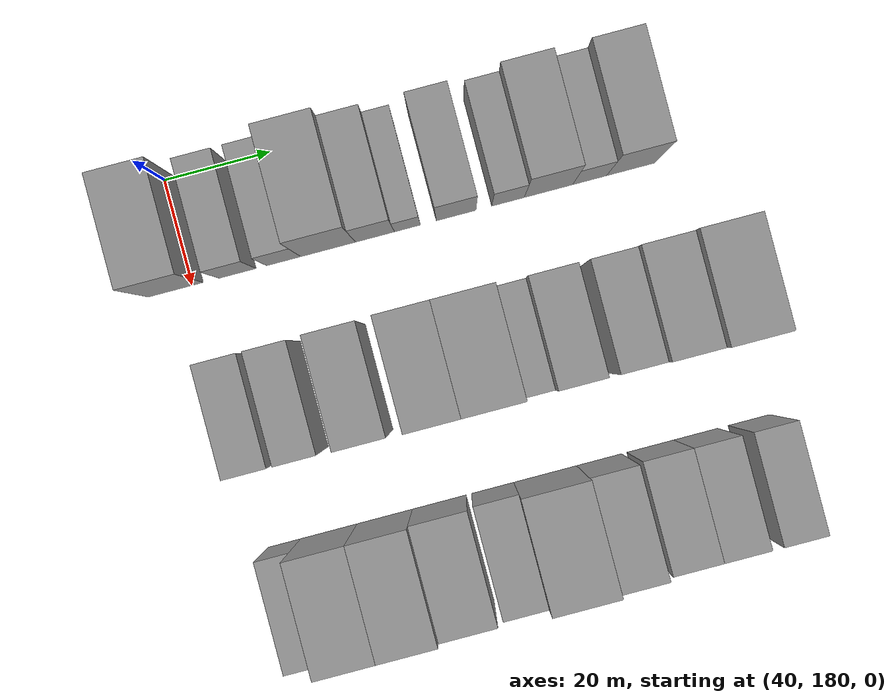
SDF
<sdf version="1.6">
 <world name="default">
  <model name="building_64">
   <static>1</static>
   <pose>50.0000 176.8985 0 0.000000 0.000000 0.000000</pose>
   <link name="link">
    <pose>0 0 10.50 0 0 0</pose>
    <collision name="collision"><geometry><box><size>20.0000 10.3888 21.0000</size></box></geometry></collision>
    <visual name="visual">
     <cast_shadows>0</cast_shadows>
     <geometry><box><size>20.0000 10.3888 21.0000</size></box></geometry>
     <material>
      <script>
       <uri>model://grey_wall/materials/scripts</uri>
       <uri>model://grey_wall/materials/textures</uri>
       <name>vrc/grey_wall</name>
      </script>
     </material>
    </visual>
   </link>
  </model>
  <model name="building_65">
   <static>1</static>
   <pose>50.0000 188.6103 0 0.000000 0.000000 0.000000</pose>
   <link name="link">
    <pose>0 0 7.50 0 0 0</pose>
    <collision name="collision"><geometry><box><size>20.0000 7.0349 15.0000</size></box></geometry></collision>
    <visual name="visual">
     <cast_shadows>0</cast_shadows>
     <geometry><box><size>20.0000 7.0349 15.0000</size></box></geometry>
     <material>
      <script>
       <uri>model://grey_wall/materials/scripts</uri>
       <uri>model://grey_wall/materials/textures</uri>
       <name>vrc/grey_wall</name>
      </script>
     </material>
    </visual>
   </link>
  </model>
  <model name="building_66">
   <static>1</static>
   <pose>50.0000 197.3652 0 0.000000 0.000000 0.000000</pose>
   <link name="link">
    <pose>0 0 7.50 0 0 0</pose>
    <collision name="collision"><geometry><box><size>20.0000 6.4748 15.0000</size></box></geometry></collision>
    <visual name="visual">
     <cast_shadows>0</cast_shadows>
     <geometry><box><size>20.0000 6.4748 15.0000</size></box></geometry>
     <material>
      <script>
       <uri>model://grey_wall/materials/scripts</uri>
       <uri>model://grey_wall/materials/textures</uri>
       <name>vrc/grey_wall</name>
      </script>
     </material>
    </visual>
   </link>
  </model>
  <model name="building_67">
   <static>1</static>
   <pose>50.0000 205.8028 0 0.000000 0.000000 0.000000</pose>
   <link name="link">
    <pose>0 0 12.00 0 0 0</pose>
    <collision name="collision"><geometry><box><size>20.0000 10.4004 24.0000</size></box></geometry></collision>
    <visual name="visual">
     <cast_shadows>0</cast_shadows>
     <geometry><box><size>20.0000 10.4004 24.0000</size></box></geometry>
     <material>
      <script>
       <uri>model://grey_wall/materials/scripts</uri>
       <uri>model://grey_wall/materials/textures</uri>
       <name>vrc/grey_wall</name>
      </script>
     </material>
    </visual>
   </link>
  </model>
  <model name="building_68">
   <static>1</static>
   <pose>50.0000 214.6893 0 0.000000 0.000000 0.000000</pose>
   <link name="link">
    <pose>0 0 9.00 0 0 0</pose>
    <collision name="collision"><geometry><box><size>20.0000 7.3727 18.0000</size></box></geometry></collision>
    <visual name="visual">
     <cast_shadows>0</cast_shadows>
     <geometry><box><size>20.0000 7.3727 18.0000</size></box></geometry>
     <material>
      <script>
       <uri>model://grey_wall/materials/scripts</uri>
       <uri>model://grey_wall/materials/textures</uri>
       <name>vrc/grey_wall</name>
      </script>
     </material>
    </visual>
   </link>
  </model>
  <model name="building_69">
   <static>1</static>
   <pose>50.0000 220.8367 0 0.000000 0.000000 0.000000</pose>
   <link name="link">
    <pose>0 0 6.00 0 0 0</pose>
    <collision name="collision"><geometry><box><size>20.0000 4.9220 12.0000</size></box></geometry></collision>
    <visual name="visual">
     <cast_shadows>0</cast_shadows>
     <geometry><box><size>20.0000 4.9220 12.0000</size></box></geometry>
     <material>
      <script>
       <uri>model://grey_wall/materials/scripts</uri>
       <uri>model://grey_wall/materials/textures</uri>
       <name>vrc/grey_wall</name>
      </script>
     </material>
    </visual>
   </link>
  </model>
  <model name="building_70">
   <static>1</static>
   <pose>50.0000 230.0534 0 0.000000 0.000000 0.000000</pose>
   <link name="link">
    <pose>0 0 9.00 0 0 0</pose>
    <collision name="collision"><geometry><box><size>20.0000 7.5115 18.0000</size></box></geometry></collision>
    <visual name="visual">
     <cast_shadows>0</cast_shadows>
     <geometry><box><size>20.0000 7.5115 18.0000</size></box></geometry>
     <material>
      <script>
       <uri>model://grey_wall/materials/scripts</uri>
       <uri>model://grey_wall/materials/textures</uri>
       <name>vrc/grey_wall</name>
      </script>
     </material>
    </visual>
   </link>
  </model>
  <model name="building_71">
   <static>1</static>
   <pose>50.0000 239.8862 0 0.000000 0.000000 0.000000</pose>
   <link name="link">
    <pose>0 0 7.50 0 0 0</pose>
    <collision name="collision"><geometry><box><size>20.0000 6.1540 15.0000</size></box></geometry></collision>
    <visual name="visual">
     <cast_shadows>0</cast_shadows>
     <geometry><box><size>20.0000 6.1540 15.0000</size></box></geometry>
     <material>
      <script>
       <uri>model://grey_wall/materials/scripts</uri>
       <uri>model://grey_wall/materials/textures</uri>
       <name>vrc/grey_wall</name>
      </script>
     </material>
    </visual>
   </link>
  </model>
  <model name="building_72">
   <static>1</static>
   <pose>50.0000 247.5610 0 0.000000 0.000000 0.000000</pose>
   <link name="link">
    <pose>0 0 10.50 0 0 0</pose>
    <collision name="collision"><geometry><box><size>20.0000 9.1957 21.0000</size></box></geometry></collision>
    <visual name="visual">
     <cast_shadows>0</cast_shadows>
     <geometry><box><size>20.0000 9.1957 21.0000</size></box></geometry>
     <material>
      <script>
       <uri>model://grey_wall/materials/scripts</uri>
       <uri>model://grey_wall/materials/textures</uri>
       <name>vrc/grey_wall</name>
      </script>
     </material>
    </visual>
   </link>
  </model>
  <model name="building_73">
   <static>1</static>
   <pose>50.0000 255.3645 0 0.000000 0.000000 0.000000</pose>
   <link name="link">
    <pose>0 0 7.50 0 0 0</pose>
    <collision name="collision"><geometry><box><size>20.0000 6.4113 15.0000</size></box></geometry></collision>
    <visual name="visual">
     <cast_shadows>0</cast_shadows>
     <geometry><box><size>20.0000 6.4113 15.0000</size></box></geometry>
     <material>
      <script>
       <uri>model://grey_wall/materials/scripts</uri>
       <uri>model://grey_wall/materials/textures</uri>
       <name>vrc/grey_wall</name>
      </script>
     </material>
    </visual>
   </link>
  </model>
  <model name="building_74">
   <static>1</static>
   <pose>50.0000 263.1410 0 0.000000 0.000000 0.000000</pose>
   <link name="link">
    <pose>0 0 10.50 0 0 0</pose>
    <collision name="collision"><geometry><box><size>20.0000 9.1418 21.0000</size></box></geometry></collision>
    <visual name="visual">
     <cast_shadows>0</cast_shadows>
     <geometry><box><size>20.0000 9.1418 21.0000</size></box></geometry>
     <material>
      <script>
       <uri>model://grey_wall/materials/scripts</uri>
       <uri>model://grey_wall/materials/textures</uri>
       <name>vrc/grey_wall</name>
      </script>
     </material>
    </visual>
   </link>
  </model>
  <model name="building_145">
   <static>1</static>
   <pose>85.0000 183.9886 0 0.000000 0.000000 0.000000</pose>
   <link name="link">
    <pose>0 0 9.00 0 0 0</pose>
    <collision name="collision"><geometry><box><size>20.0000 7.8847 18.0000</size></box></geometry></collision>
    <visual name="visual">
     <cast_shadows>0</cast_shadows>
     <geometry><box><size>20.0000 7.8847 18.0000</size></box></geometry>
     <material>
      <script>
       <uri>model://grey_wall/materials/scripts</uri>
       <uri>model://grey_wall/materials/textures</uri>
       <name>vrc/grey_wall</name>
      </script>
     </material>
    </visual>
   </link>
  </model>
  <model name="building_146">
   <static>1</static>
   <pose>85.0000 192.7471 0 0.000000 0.000000 0.000000</pose>
   <link name="link">
    <pose>0 0 9.00 0 0 0</pose>
    <collision name="collision"><geometry><box><size>20.0000 7.6324 18.0000</size></box></geometry></collision>
    <visual name="visual">
     <cast_shadows>0</cast_shadows>
     <geometry><box><size>20.0000 7.6324 18.0000</size></box></geometry>
     <material>
      <script>
       <uri>model://grey_wall/materials/scripts</uri>
       <uri>model://grey_wall/materials/textures</uri>
       <name>vrc/grey_wall</name>
      </script>
     </material>
    </visual>
   </link>
  </model>
  <model name="building_147">
   <static>1</static>
   <pose>85.0000 204.1989 0 0.000000 0.000000 0.000000</pose>
   <link name="link">
    <pose>0 0 10.50 0 0 0</pose>
    <collision name="collision"><geometry><box><size>20.0000 9.2712 21.0000</size></box></geometry></collision>
    <visual name="visual">
     <cast_shadows>0</cast_shadows>
     <geometry><box><size>20.0000 9.2712 21.0000</size></box></geometry>
     <material>
      <script>
       <uri>model://grey_wall/materials/scripts</uri>
       <uri>model://grey_wall/materials/textures</uri>
       <name>vrc/grey_wall</name>
      </script>
     </material>
    </visual>
   </link>
  </model>
  <model name="building_148">
   <static>1</static>
   <pose>85.0000 216.7560 0 0.000000 0.000000 0.000000</pose>
   <link name="link">
    <pose>0 0 12.00 0 0 0</pose>
    <collision name="collision"><geometry><box><size>20.0000 9.8429 24.0000</size></box></geometry></collision>
    <visual name="visual">
     <cast_shadows>0</cast_shadows>
     <geometry><box><size>20.0000 9.8429 24.0000</size></box></geometry>
     <material>
      <script>
       <uri>model://grey_wall/materials/scripts</uri>
       <uri>model://grey_wall/materials/textures</uri>
       <name>vrc/grey_wall</name>
      </script>
     </material>
    </visual>
   </link>
  </model>
  <model name="building_149">
   <static>1</static>
   <pose>85.0000 227.2353 0 0.000000 0.000000 0.000000</pose>
   <link name="link">
    <pose>0 0 12.00 0 0 0</pose>
    <collision name="collision"><geometry><box><size>20.0000 11.1158 24.0000</size></box></geometry></collision>
    <visual name="visual">
     <cast_shadows>0</cast_shadows>
     <geometry><box><size>20.0000 11.1158 24.0000</size></box></geometry>
     <material>
      <script>
       <uri>model://grey_wall/materials/scripts</uri>
       <uri>model://grey_wall/materials/textures</uri>
       <name>vrc/grey_wall</name>
      </script>
     </material>
    </visual>
   </link>
  </model>
  <model name="building_150">
   <static>1</static>
   <pose>85.0000 235.6933 0 0.000000 0.000000 0.000000</pose>
   <link name="link">
    <pose>0 0 6.00 0 0 0</pose>
    <collision name="collision"><geometry><box><size>20.0000 5.8001 12.0000</size></box></geometry></collision>
    <visual name="visual">
     <cast_shadows>0</cast_shadows>
     <geometry><box><size>20.0000 5.8001 12.0000</size></box></geometry>
     <material>
      <script>
       <uri>model://grey_wall/materials/scripts</uri>
       <uri>model://grey_wall/materials/textures</uri>
       <name>vrc/grey_wall</name>
      </script>
     </material>
    </visual>
   </link>
  </model>
  <model name="building_151">
   <static>1</static>
   <pose>85.0000 243.0001 0 0.000000 0.000000 0.000000</pose>
   <link name="link">
    <pose>0 0 9.00 0 0 0</pose>
    <collision name="collision"><geometry><box><size>20.0000 8.8135 18.0000</size></box></geometry></collision>
    <visual name="visual">
     <cast_shadows>0</cast_shadows>
     <geometry><box><size>20.0000 8.8135 18.0000</size></box></geometry>
     <material>
      <script>
       <uri>model://grey_wall/materials/scripts</uri>
       <uri>model://grey_wall/materials/textures</uri>
       <name>vrc/grey_wall</name>
      </script>
     </material>
    </visual>
   </link>
  </model>
  <model name="building_152">
   <static>1</static>
   <pose>85.0000 253.5554 0 0.000000 0.000000 0.000000</pose>
   <link name="link">
    <pose>0 0 9.00 0 0 0</pose>
    <collision name="collision"><geometry><box><size>20.0000 8.2970 18.0000</size></box></geometry></collision>
    <visual name="visual">
     <cast_shadows>0</cast_shadows>
     <geometry><box><size>20.0000 8.2970 18.0000</size></box></geometry>
     <material>
      <script>
       <uri>model://grey_wall/materials/scripts</uri>
       <uri>model://grey_wall/materials/textures</uri>
       <name>vrc/grey_wall</name>
      </script>
     </material>
    </visual>
   </link>
  </model>
  <model name="building_153">
   <static>1</static>
   <pose>85.0000 262.3510 0 0.000000 0.000000 0.000000</pose>
   <link name="link">
    <pose>0 0 10.50 0 0 0</pose>
    <collision name="collision"><geometry><box><size>20.0000 9.2942 21.0000</size></box></geometry></collision>
    <visual name="visual">
     <cast_shadows>0</cast_shadows>
     <geometry><box><size>20.0000 9.2942 21.0000</size></box></geometry>
     <material>
      <script>
       <uri>model://grey_wall/materials/scripts</uri>
       <uri>model://grey_wall/materials/textures</uri>
       <name>vrc/grey_wall</name>
      </script>
     </material>
    </visual>
   </link>
  </model>
  <model name="building_154">
   <static>1</static>
   <pose>85.0000 272.4054 0 0.000000 0.000000 0.000000</pose>
   <link name="link">
    <pose>0 0 12.00 0 0 0</pose>
    <collision name="collision"><geometry><box><size>20.0000 10.8147 24.0000</size></box></geometry></collision>
    <visual name="visual">
     <cast_shadows>0</cast_shadows>
     <geometry><box><size>20.0000 10.8147 24.0000</size></box></geometry>
     <material>
      <script>
       <uri>model://grey_wall/materials/scripts</uri>
       <uri>model://grey_wall/materials/textures</uri>
       <name>vrc/grey_wall</name>
      </script>
     </material>
    </visual>
   </link>
  </model>
  <model name="building_226">
   <static>1</static>
   <pose>120.0000 184.2614 0 0.000000 0.000000 0.000000</pose>
   <link name="link">
    <pose>0 0 7.50 0 0 0</pose>
    <collision name="collision"><geometry><box><size>20.0000 6.2006 15.0000</size></box></geometry></collision>
    <visual name="visual">
     <cast_shadows>0</cast_shadows>
     <geometry><box><size>20.0000 6.2006 15.0000</size></box></geometry>
     <material>
      <script>
       <uri>model://grey_wall/materials/scripts</uri>
       <uri>model://grey_wall/materials/textures</uri>
       <name>vrc/grey_wall</name>
      </script>
     </material>
    </visual>
   </link>
  </model>
  <model name="building_227">
   <static>1</static>
   <pose>120.0000 192.7088 0 0.000000 0.000000 0.000000</pose>
   <link name="link">
    <pose>0 0 12.00 0 0 0</pose>
    <collision name="collision"><geometry><box><size>20.0000 10.6941 24.0000</size></box></geometry></collision>
    <visual name="visual">
     <cast_shadows>0</cast_shadows>
     <geometry><box><size>20.0000 10.6941 24.0000</size></box></geometry>
     <material>
      <script>
       <uri>model://grey_wall/materials/scripts</uri>
       <uri>model://grey_wall/materials/textures</uri>
       <name>vrc/grey_wall</name>
      </script>
     </material>
    </visual>
   </link>
  </model>
  <model name="building_228">
   <static>1</static>
   <pose>120.0000 203.2987 0 0.000000 0.000000 0.000000</pose>
   <link name="link">
    <pose>0 0 12.00 0 0 0</pose>
    <collision name="collision"><geometry><box><size>20.0000 10.4856 24.0000</size></box></geometry></collision>
    <visual name="visual">
     <cast_shadows>0</cast_shadows>
     <geometry><box><size>20.0000 10.4856 24.0000</size></box></geometry>
     <material>
      <script>
       <uri>model://grey_wall/materials/scripts</uri>
       <uri>model://grey_wall/materials/textures</uri>
       <name>vrc/grey_wall</name>
      </script>
     </material>
    </visual>
   </link>
  </model>
  <model name="building_229">
   <static>1</static>
   <pose>120.0000 213.6302 0 0.000000 0.000000 0.000000</pose>
   <link name="link">
    <pose>0 0 10.50 0 0 0</pose>
    <collision name="collision"><geometry><box><size>20.0000 10.1773 21.0000</size></box></geometry></collision>
    <visual name="visual">
     <cast_shadows>0</cast_shadows>
     <geometry><box><size>20.0000 10.1773 21.0000</size></box></geometry>
     <material>
      <script>
       <uri>model://grey_wall/materials/scripts</uri>
       <uri>model://grey_wall/materials/textures</uri>
       <name>vrc/grey_wall</name>
      </script>
     </material>
    </visual>
   </link>
  </model>
  <model name="building_230">
   <static>1</static>
   <pose>120.0000 223.7211 0 0.000000 0.000000 0.000000</pose>
   <link name="link">
    <pose>0 0 9.00 0 0 0</pose>
    <collision name="collision"><geometry><box><size>20.0000 8.0046 18.0000</size></box></geometry></collision>
    <visual name="visual">
     <cast_shadows>0</cast_shadows>
     <geometry><box><size>20.0000 8.0046 18.0000</size></box></geometry>
     <material>
      <script>
       <uri>model://grey_wall/materials/scripts</uri>
       <uri>model://grey_wall/materials/textures</uri>
       <name>vrc/grey_wall</name>
      </script>
     </material>
    </visual>
   </link>
  </model>
  <model name="building_231">
   <static>1</static>
   <pose>120.0000 233.6905 0 0.000000 0.000000 0.000000</pose>
   <link name="link">
    <pose>0 0 12.00 0 0 0</pose>
    <collision name="collision"><geometry><box><size>20.0000 11.9342 24.0000</size></box></geometry></collision>
    <visual name="visual">
     <cast_shadows>0</cast_shadows>
     <geometry><box><size>20.0000 11.9342 24.0000</size></box></geometry>
     <material>
      <script>
       <uri>model://grey_wall/materials/scripts</uri>
       <uri>model://grey_wall/materials/textures</uri>
       <name>vrc/grey_wall</name>
      </script>
     </material>
    </visual>
   </link>
  </model>
  <model name="building_232">
   <static>1</static>
   <pose>120.0000 243.9291 0 0.000000 0.000000 0.000000</pose>
   <link name="link">
    <pose>0 0 10.50 0 0 0</pose>
    <collision name="collision"><geometry><box><size>20.0000 8.5429 21.0000</size></box></geometry></collision>
    <visual name="visual">
     <cast_shadows>0</cast_shadows>
     <geometry><box><size>20.0000 8.5429 21.0000</size></box></geometry>
     <material>
      <script>
       <uri>model://grey_wall/materials/scripts</uri>
       <uri>model://grey_wall/materials/textures</uri>
       <name>vrc/grey_wall</name>
      </script>
     </material>
    </visual>
   </link>
  </model>
  <model name="building_233">
   <static>1</static>
   <pose>120.0000 253.6373 0 0.000000 0.000000 0.000000</pose>
   <link name="link">
    <pose>0 0 9.00 0 0 0</pose>
    <collision name="collision"><geometry><box><size>20.0000 8.8736 18.0000</size></box></geometry></collision>
    <visual name="visual">
     <cast_shadows>0</cast_shadows>
     <geometry><box><size>20.0000 8.8736 18.0000</size></box></geometry>
     <material>
      <script>
       <uri>model://grey_wall/materials/scripts</uri>
       <uri>model://grey_wall/materials/textures</uri>
       <name>vrc/grey_wall</name>
      </script>
     </material>
    </visual>
   </link>
  </model>
  <model name="building_234">
   <static>1</static>
   <pose>120.0000 262.2475 0 0.000000 0.000000 0.000000</pose>
   <link name="link">
    <pose>0 0 9.00 0 0 0</pose>
    <collision name="collision"><geometry><box><size>20.0000 8.3468 18.0000</size></box></geometry></collision>
    <visual name="visual">
     <cast_shadows>0</cast_shadows>
     <geometry><box><size>20.0000 8.3468 18.0000</size></box></geometry>
     <material>
      <script>
       <uri>model://grey_wall/materials/scripts</uri>
       <uri>model://grey_wall/materials/textures</uri>
       <name>vrc/grey_wall</name>
      </script>
     </material>
    </visual>
   </link>
  </model>
  <model name="building_235">
   <static>1</static>
   <pose>120.0000 272.3525 0 0.000000 0.000000 0.000000</pose>
   <link name="link">
    <pose>0 0 9.00 0 0 0</pose>
    <collision name="collision"><geometry><box><size>20.0000 7.8633 18.0000</size></box></geometry></collision>
    <visual name="visual">
     <cast_shadows>0</cast_shadows>
     <geometry><box><size>20.0000 7.8633 18.0000</size></box></geometry>
     <material>
      <script>
       <uri>model://grey_wall/materials/scripts</uri>
       <uri>model://grey_wall/materials/textures</uri>
       <name>vrc/grey_wall</name>
      </script>
     </material>
    </visual>
   </link>
  </model>
 </world>
</sdf>
